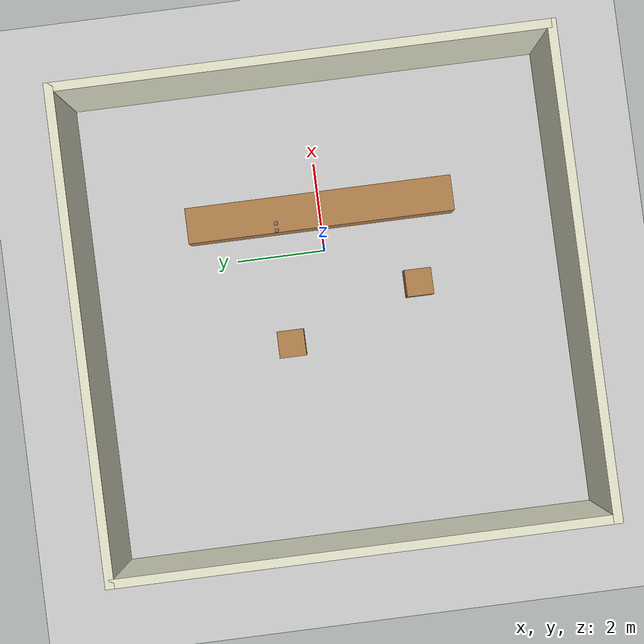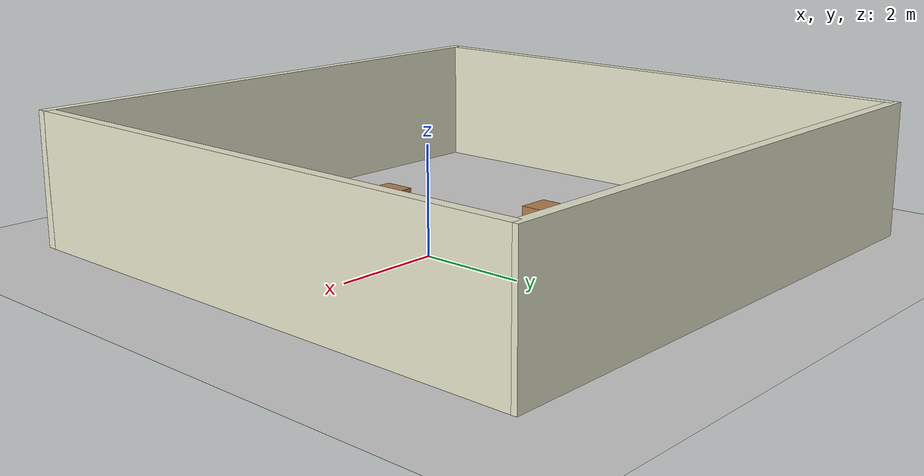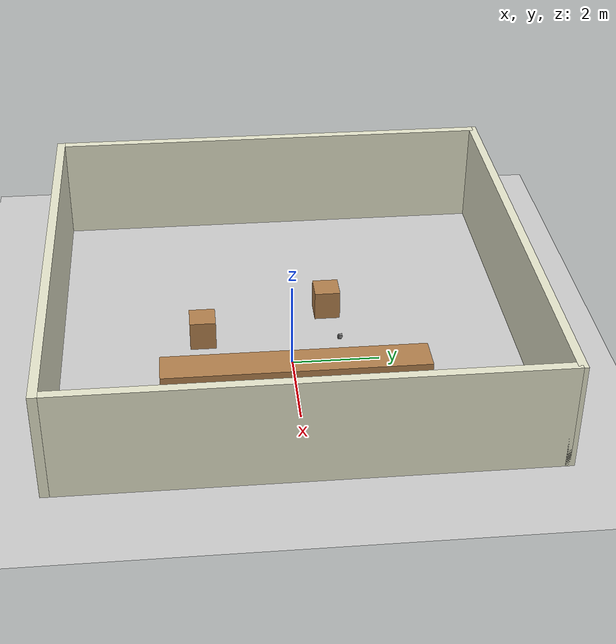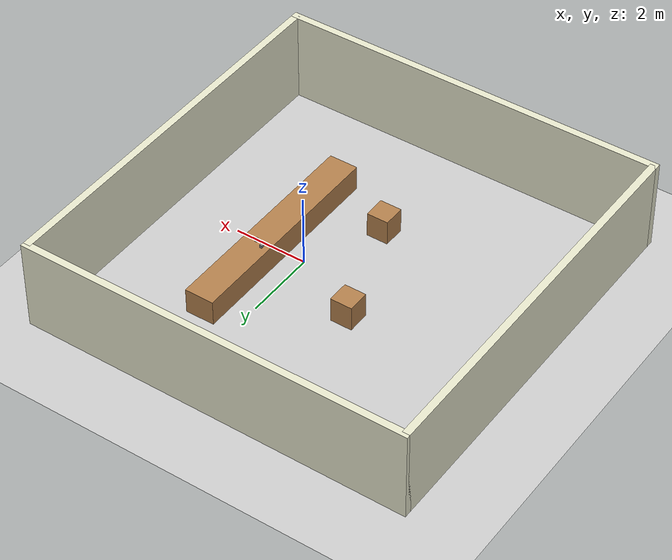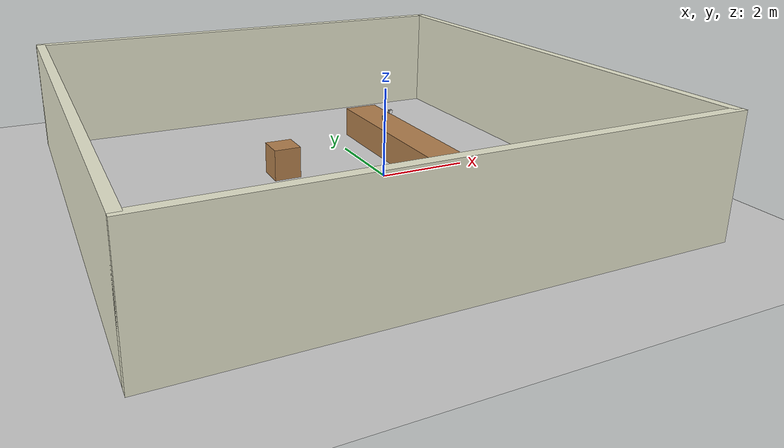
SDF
<?xml version="1.0" ?>
<sdf version="1.4">
  <!-- We use a custom world for the rrbot so that the camera angle is launched correctly -->

  <world name="default">
    <!-- Included light -->
    <include>
      <uri>https://fuel.gazebosim.org/1.0/OpenRobotics/models/Sun</uri>
    </include>

    <!-- Included model -->
    <include>
      <uri>https://fuel.gazebosim.org/1.0/OpenRobotics/models/Ground Plane</uri>
    </include>

    <include>
      <uri>
        model://arucotag1
      </uri>
      <name>arucotag1</name>
      <pose>0.52 0.96 1.01 1.5708 0 0</pose>
    </include>

    <include>
      <uri>
        model://arucotag2
      </uri>
      <name>arucotag2</name>
      <pose>0.67 0.96 1.14 1.5708 0 0</pose>
    </include>

    <include>
      <uri>
        model://table
      </uri>
      <name>table1</name>
      <pose>-2 1 0 0 0 0</pose>
    </include>

    <include>
      <uri>
        model://table
      </uri>
      <name>table2</name>
      <pose>-1 -2 0 0 0 0</pose>
    </include>

    <include>
      <uri>
        model://counter
      </uri>
      <name>counter</name>
      <pose>0.9 0 0 0 0 0</pose>
    </include>

    <model name="structure">
      <static>true</static>

      <link name="walls">

        <visual name="wall_south_visual">
          <pose>-6.5 0 1.25 0 0 0</pose>
          <geometry>
            <box>
              <size>0.2 10.7 2.5</size>
            </box>
          </geometry>
          <material><ambient>0.9 0.9 0.8 1</ambient><diffuse>0.9 0.9 0.8 1</diffuse></material>
        </visual>
        <collision name="wall_south_collision">
          <pose>-6.5 0 1.25 0 0 0</pose>
          <geometry>
            <box>
              <size>0.2 10.7 2.5</size>
            </box>
          </geometry>
        </collision>

        <visual name="wall_north_visual">
          <pose>4 0 1.25 0 0 0</pose>
          <geometry>
            <box>
              <size>0.2 10.7 2.5</size>
            </box>
          </geometry>
          <material><ambient>0.9 0.9 0.8 1</ambient><diffuse>0.9 0.9 0.8 1</diffuse></material>
        </visual>
        <collision name="wall_north_collision">
          <pose>4 0 1.25 0 0 0</pose>
          <geometry>
            <box>
              <size>0.2 10.7 2.5</size>
            </box>
          </geometry>
        </collision>

        <visual name="wall_west_visual">
          <pose>-1.25 5.35 1.25 0 0 0</pose>
          <geometry>
            <box>
              <size>10.7 0.2 2.5</size>
            </box>
          </geometry>
          <material><ambient>0.9 0.9 0.8 1</ambient><diffuse>0.9 0.9 0.8 1</diffuse></material>
        </visual>
        <collision name="wall_west_collision">
          <pose>-1.25 5.35 1.25 0 0 0</pose>
          <geometry>
            <box>
              <size>10.7 0.2 2.5</size>
            </box>
          </geometry>
        </collision>

        <visual name="wall_est_visual">
          <pose>-1.25 -5.35 1.25 0 0 0</pose>
          <geometry>
            <box>
              <size>10.7 0.2 2.5</size>
            </box>
          </geometry>
          <material><ambient>0.9 0.9 0.8 1</ambient><diffuse>0.9 0.9 0.8 1</diffuse></material>
        </visual>
        <collision name="wall_est_collision">
          <pose>-1.25 -5.35 1.25 0 0 0</pose>
          <geometry>
            <box>
              <size>10.7 0.2 2.5</size>
            </box>
          </geometry>
        </collision>

      </link>
    </model>

  </world>
</sdf>

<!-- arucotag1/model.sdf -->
<sdf version='1.9'>
  <model name='arucotag1'>
    <static>true</static>

    <link name='link'>

      <visual name="box">
        <pose>0 0 -0.04 0 0 0</pose>
        <geometry>
          <box><size>0.075 0.075 0.075</size></box>
        </geometry>
        <material><diffuse>0.5 0.5 0.5 1</diffuse></material>
      </visual>

      <visual name="tag">
        <geometry>
          <box>
            <size>0.075 0.075 0.001</size>
          </box>
        </geometry>
        <material>
          <diffuse>1 1 1 1</diffuse>
          <specular>0.4 0.4 0.4 1</specular>
          <pbr>
            <metal>
              <albedo_map>model://arucotag1/materials/textures/aruco-201.png</albedo_map>
            </metal>
          </pbr>
        </material>
      </visual>

    </link>

  </model>
</sdf>

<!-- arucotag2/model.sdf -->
<sdf version='1.9'>
  <model name='arucotag2'>
    <static>true</static>

    <link name='link'>

      <visual name="box">
        <pose>0 0 -0.04 0 0 0</pose> <!-- 2 cm spostata rispetto al tag -->
        <geometry>
          <box><size>0.075 0.075 0.075</size></box>
        </geometry>
        <material><diffuse>0.5 0.5 0.5 1</diffuse></material>
      </visual>

      <visual name="tag">
        <geometry>
          <box>
            <size>0.075 0.075 0.001</size>
          </box>
        </geometry>
        <material>
          <diffuse>1 1 1 1</diffuse>
          <specular>0.4 0.4 0.4 1</specular>
          <pbr>
            <metal>
              <albedo_map>model://arucotag2/materials/textures/aruco-301.png</albedo_map>
            </metal>
          </pbr>
        </material>
      </visual>

    </link>

  </model>
</sdf>

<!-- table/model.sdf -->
<sdf version='1.9'>
  <model name='table'>
    <static>true</static>

    <link name='link'>

      <pose>0 0 0.35 0 0 0</pose>

      <collision name="collision">
        <geometry>
          <box>
            <size>0.6 0.6 0.7</size>
          </box>
        </geometry>
      </collision>

      <visual name="visual">
        <geometry>
          <box>
            <size>0.6 0.6 0.7</size>
          </box>
        </geometry>
        <material>
          <ambient>0.7 0.5 0.3 1</ambient>
          <diffuse>0.7 0.5 0.3 1</diffuse>
        </material>
      </visual>

    </link>

  </model>
</sdf>

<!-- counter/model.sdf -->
<sdf version='1.9'>
  <model name='table'>
    <static>true</static>

    <link name='link'>

      <pose>0 0 0.35 0 0 0</pose>

      <collision name="collision">
        <geometry>
          <box>
            <size>0.8 6 0.7</size>
          </box>
        </geometry>
      </collision>

      <visual name="visual">
        <geometry>
          <box>
            <size>0.8 6 0.7</size>
          </box>
        </geometry>
        <material>
          <ambient>0.7 0.5 0.3 1</ambient>
          <diffuse>0.7 0.5 0.3 1</diffuse>
        </material>
      </visual>

    </link>

  </model>
</sdf>
